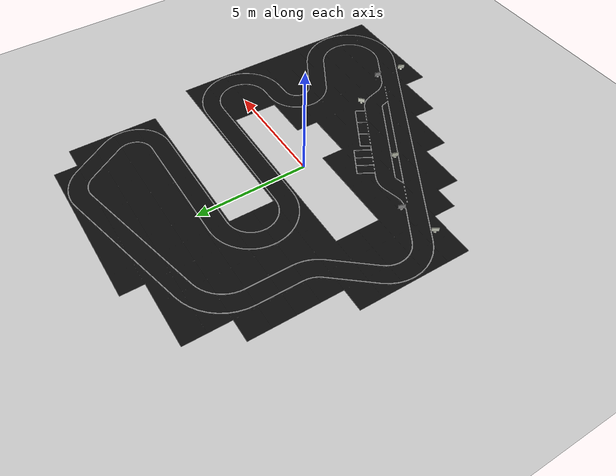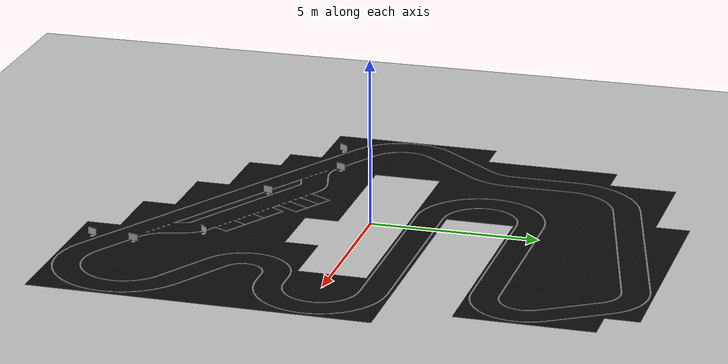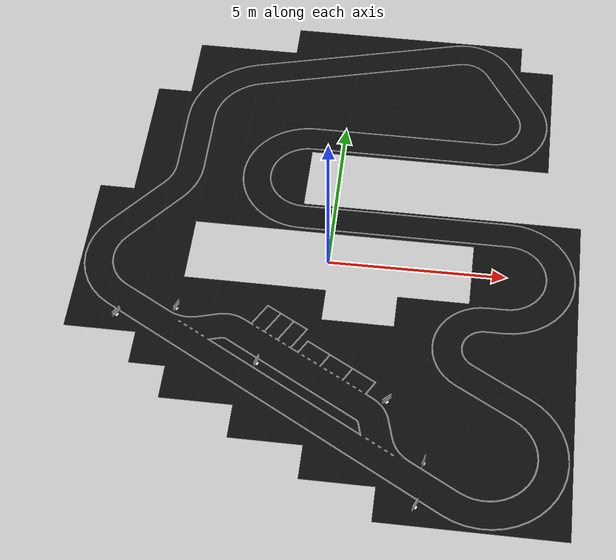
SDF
<sdf version="1.7">
 <world name="default">
  <light name="sun" type="directional">
   <pose>0 0 10 0 -0 0</pose>
   <diffuse>0.8 0.8 0.8 1</diffuse>
   <specular>0.2 0.2 0.2 1</specular>
   <attenuation>
    <range>1000</range>
    <constant>0.9</constant>
    <linear>0.01</linear>
    <quadratic>0.001</quadratic>
   </attenuation>
   <direction>-0.5 0.1 -0.9</direction>
   <spot><inner_angle>0</inner_angle><outer_angle>0</outer_angle><falloff>0</falloff></spot>
  </light>
  <model name="ground_plane">
   <static>1</static>
   <link name="link">
    <collision name="collision">
     <geometry><plane><normal>0 0 1</normal><size>100 100</size></plane></geometry>
     <surface>
      <contact><collide_bitmask>65535</collide_bitmask></contact>
      <friction><ode><mu>100</mu><mu2>50</mu2></ode></friction>
     </surface>
    </collision>
    <visual name="visual">
     <cast_shadows>0</cast_shadows>
     <geometry><plane><normal>0 0 1</normal><size>100 100</size></plane></geometry>
     <material>
      <script><uri>file://media/materials/scripts/gazebo.material</uri><name>Gazebo/Grey</name></script>
     </material>
    </visual>
   </link>
  </model>
  <gravity>0 0 -9.8</gravity>
  <magnetic_field>6e-06 2.3e-05 -4.2e-05</magnetic_field>
  <atmosphere type="adiabatic"/>
  <physics type="ode">
   <max_step_size>0.001</max_step_size>
   <real_time_factor>1</real_time_factor>
   <real_time_update_rate>1000</real_time_update_rate>
  </physics>
  <scene><ambient>0.4 0.4 0.4 1</ambient><background>0.7 0.7 0.7 1</background><shadows>1</shadows></scene>
  <spherical_coordinates>
   <surface_model>EARTH_WGS84</surface_model>
   <latitude_deg>0</latitude_deg>
   <longitude_deg>0</longitude_deg>
   <elevation>0</elevation>
   <heading_deg>0</heading_deg>
  </spherical_coordinates>
  <model name="Dekra_2023">
   <static>1</static>
   <link name="link">
    <collision name="collision">
     <geometry><mesh><uri>model://Dekra_2023/meshes/Dekra_2023.dae</uri></mesh></geometry>
     <surface><friction><ode><mu>100</mu><mu2>50</mu2></ode></friction></surface>
    </collision>
    <visual name="visual">
     <geometry><mesh><uri>model://Dekra_2023/meshes/Dekra_2023.dae</uri></mesh></geometry>
    </visual>
   </link>
   <pose>-0.974929 -0.280693 0 0 -0 3.14132</pose>
  </model>
  <model name="Cross_Parking">
   <static>1</static>
   <link name="link">
    <collision name="collision">
     <geometry><mesh><uri>model://Cross_Parking/meshes/Cross_Parking.dae</uri></mesh></geometry>
    </collision>
    <visual name="visual">
     <geometry><mesh><uri>model://Cross_Parking/meshes/Cross_Parking.dae</uri></mesh></geometry>
    </visual>
   </link>
   <pose>-1.55717 -3.58215 0 0 0 -1.90654</pose>
  </model>
  <model name="Overtaking_permitted">
   <static>1</static>
   <link name="link">
    <collision name="collision">
     <geometry><mesh><uri>model://Overtaking_permitted/meshes/overtaking_permitted.dae</uri></mesh></geometry>
    </collision>
    <visual name="visual">
     <geometry><mesh><uri>model://Overtaking_permitted/meshes/overtaking_permitted.dae</uri></mesh></geometry>
    </visual>
   </link>
   <pose>3.01633 -7.45869 0 0 0 -1.99029</pose>
  </model>
  <model name="Overtaking_prohibited">
   <static>1</static>
   <link name="link">
    <collision name="collision">
     <geometry><mesh><uri>model://Overtaking_prohibited/meshes/overtaking_prohibited.dae</uri></mesh></geometry>
    </collision>
    <visual name="visual">
     <geometry><mesh><uri>model://Overtaking_prohibited/meshes/overtaking_prohibited.dae</uri></mesh></geometry>
    </visual>
   </link>
   <pose>-5.60842 -2.39943 0 0 0 -2.16187</pose>
  </model>
  <model name="PIT_IN">
   <static>1</static>
   <link name="link">
    <collision name="collision">
     <geometry><mesh><uri>model://PIT_IN/meshes/PIT_IN.dae</uri></mesh></geometry>
    </collision>
    <visual name="visual"><geometry><mesh><uri>model://PIT_IN/meshes/PIT_IN.dae</uri></mesh></geometry></visual>
   </link>
   <pose>3.1396 -6.17666 0 0 0 -1.81283</pose>
  </model>
  <model name="postbox">
   <static>1</static>
   <link name="link">
    <collision name="collision">
     <geometry><mesh><uri>model://PIT_OUT/meshes/PIT_OUT.dae</uri></mesh></geometry>
    </collision>
    <visual name="visual"><geometry><mesh><uri>model://PIT_OUT/meshes/PIT_OUT.dae</uri></mesh></geometry></visual>
   </link>
   <pose>-4.00336 -2.02481 0 0 0 -1.95689</pose>
  </model>
  <model name="Parallel_Parking">
   <static>1</static>
   <link name="link">
    <collision name="collision">
     <geometry><mesh><uri>model://Parallel_Parking/meshes/Parallel_Parking.dae</uri></mesh></geometry>
    </collision>
    <visual name="visual">
     <geometry><mesh><uri>model://Parallel_Parking/meshes/Parallel_Parking.dae</uri></mesh></geometry>
    </visual>
   </link>
   <pose>2.02995 -4.41907 0 0 0 -2.39222</pose>
  </model>
  <light name="user_directional_light_0" type="directional">
   <pose>1.30285 -0.877829 1 0 -0 0</pose>
   <diffuse>0.5 0.5 0.5 1</diffuse>
   <specular>0.1 0.1 0.1 1</specular>
   <direction>0.1 0.1 -0.9</direction>
   <attenuation>
    <range>20</range>
    <constant>0.5</constant>
    <linear>0.01</linear>
    <quadratic>0.001</quadratic>
   </attenuation>
  </light>
 </world>
</sdf>
